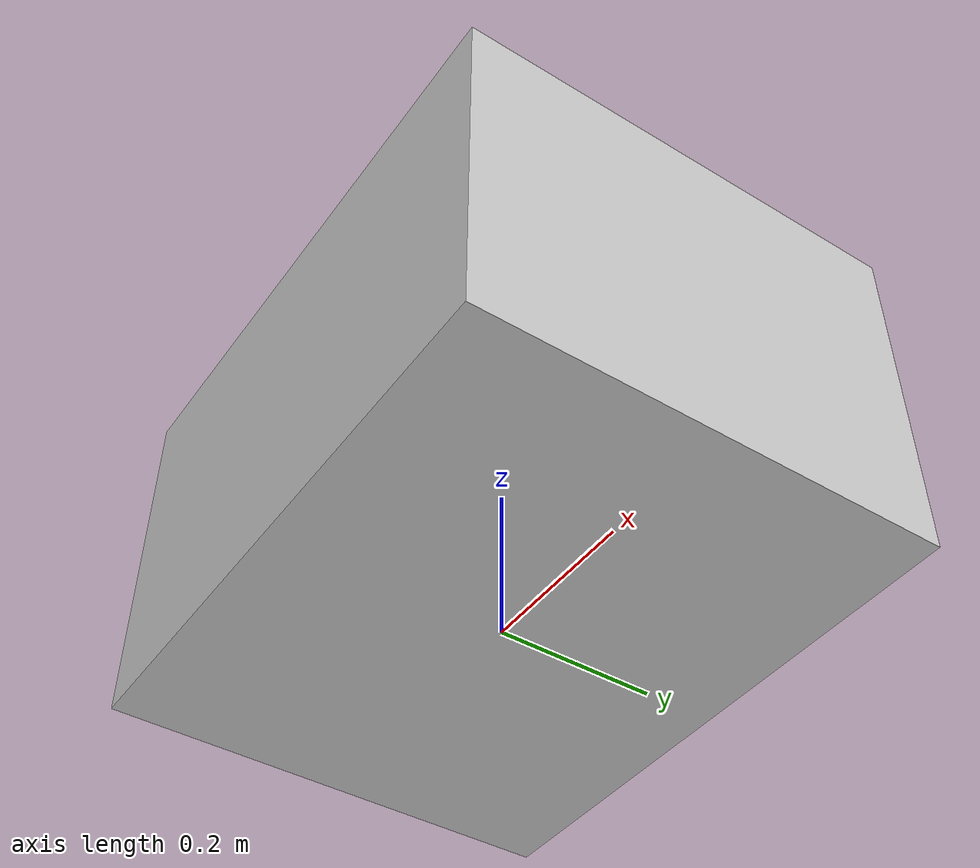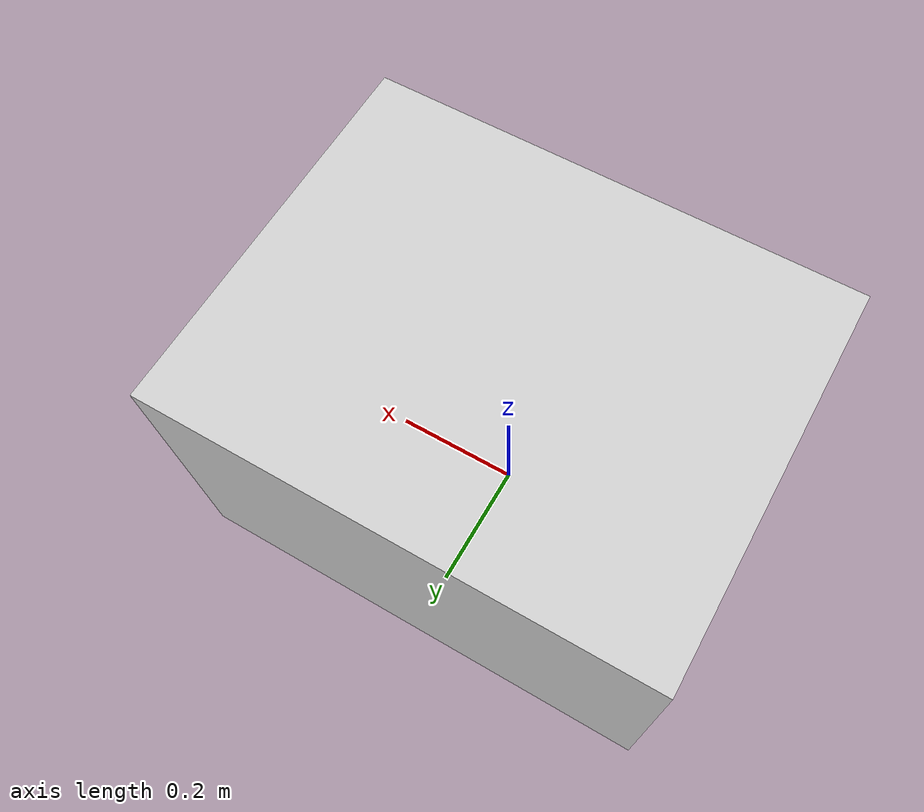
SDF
<?xml version="1.0"?>
<sdf version="1.6">
  <model name="rwc2013/armchair">
    <link name="1_link">
      <collision name="1_col">
        <geometry>
          <box>
            <size>0.74 0.583 0.45</size>
          </box>
        </geometry>
      </collision>
      <visual name="1_vis">
        <geometry>
          <box>
            <size>0.74 0.583 0.45</size>
          </box>
        </geometry>
        <material>
          <ambient>0.8 0.8 0.8 1</ambient>
        </material>
      </visual>
      <pose>0.0 0.0 0.225 0 0 0</pose>
    </link>
    <static>true</static>
  </model>
</sdf>
